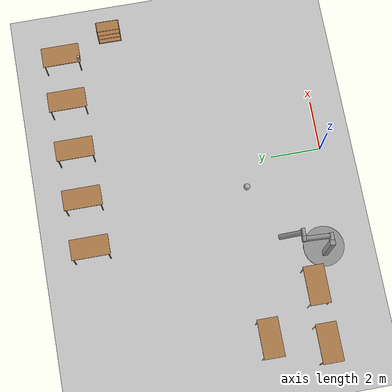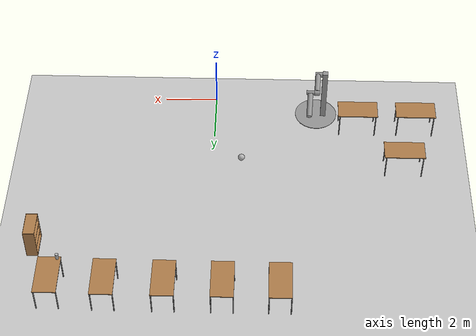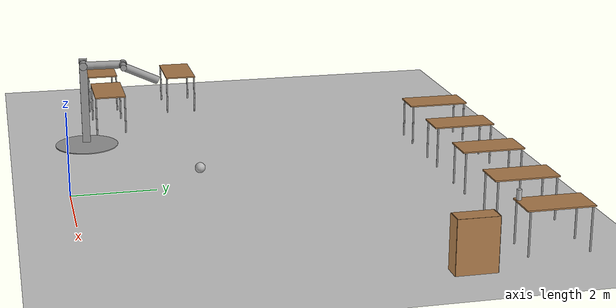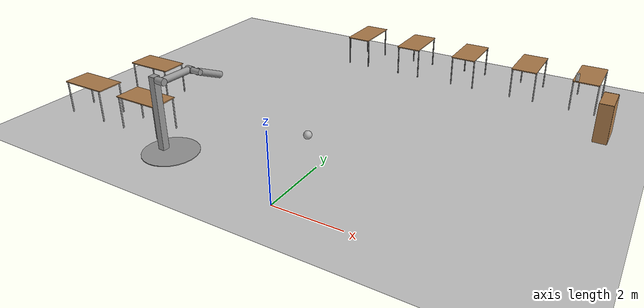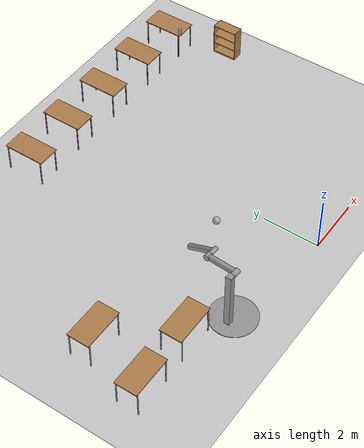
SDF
<sdf version="1.6">
 <world name="default">
  <model name="ground_plane">
   <static>1</static>
   <link name="link">
    <collision name="collision">
     <geometry><plane><normal>0 0 1</normal><size>100 100</size></plane></geometry>
     <surface>
      <contact><collide_bitmask>65535</collide_bitmask></contact>
      <friction><ode><mu>100</mu><mu2>50</mu2></ode></friction>
     </surface>
    </collision>
    <visual name="visual">
     <cast_shadows>0</cast_shadows>
     <geometry><plane><normal>0 0 1</normal><size>100 100</size></plane></geometry>
     <material>
      <script><uri>file://media/materials/scripts/gazebo.material</uri><name>Gazebo/Grey</name></script>
     </material>
    </visual>
   </link>
  </model>
  <model name="table_clone">
   <static>1</static>
   <link name="link">
    <collision name="surface">
     <pose>0 0 1 0 -0 0</pose>
     <geometry><box><size>1.5 0.8 0.03</size></box></geometry>
     <surface><friction><ode><mu>0.6</mu><mu2>0.6</mu2></ode></friction></surface>
    </collision>
    <visual name="visual1">
     <pose>0 0 1 0 -0 0</pose>
     <geometry><box><size>1.5 0.8 0.03</size></box></geometry>
     <material>
      <script><uri>file://media/materials/scripts/gazebo.material</uri><name>Gazebo/Wood</name></script>
     </material>
    </visual>
    <collision name="front_left_leg">
     <pose>0.68 0.38 0.5 0 -0 0</pose>
     <geometry><cylinder><radius>0.02</radius><length>1</length></cylinder></geometry>
    </collision>
    <visual name="front_left_leg">
     <pose>0.68 0.38 0.5 0 -0 0</pose>
     <geometry><cylinder><radius>0.02</radius><length>1</length></cylinder></geometry>
     <material>
      <script><uri>file://media/materials/scripts/gazebo.material</uri><name>Gazebo/Grey</name></script>
     </material>
    </visual>
    <collision name="front_right_leg">
     <pose>0.68 -0.38 0.5 0 -0 0</pose>
     <geometry><cylinder><radius>0.02</radius><length>1</length></cylinder></geometry>
    </collision>
    <visual name="front_right_leg">
     <pose>0.68 -0.38 0.5 0 -0 0</pose>
     <geometry><cylinder><radius>0.02</radius><length>1</length></cylinder></geometry>
     <material>
      <script><uri>file://media/materials/scripts/gazebo.material</uri><name>Gazebo/Grey</name></script>
     </material>
    </visual>
    <collision name="back_right_leg">
     <pose>-0.68 -0.38 0.5 0 -0 0</pose>
     <geometry><cylinder><radius>0.02</radius><length>1</length></cylinder></geometry>
    </collision>
    <visual name="back_right_leg">
     <pose>-0.68 -0.38 0.5 0 -0 0</pose>
     <geometry><cylinder><radius>0.02</radius><length>1</length></cylinder></geometry>
     <material>
      <script><uri>file://media/materials/scripts/gazebo.material</uri><name>Gazebo/Grey</name></script>
     </material>
    </visual>
    <collision name="back_left_leg">
     <pose>-0.68 0.38 0.5 0 -0 0</pose>
     <geometry><cylinder><radius>0.02</radius><length>1</length></cylinder></geometry>
    </collision>
    <visual name="back_left_leg">
     <pose>-0.68 0.38 0.5 0 -0 0</pose>
     <geometry><cylinder><radius>0.02</radius><length>1</length></cylinder></geometry>
     <material>
      <script><uri>file://media/materials/scripts/gazebo.material</uri><name>Gazebo/Grey</name></script>
     </material>
    </visual>
   </link>
   <pose>5.36982 9.5628 0 0 0 -1.57</pose>
  </model>
  <model name="table_clone_0">
   <static>1</static>
   <link name="link">
    <collision name="surface">
     <pose>0 0 1 0 -0 0</pose>
     <geometry><box><size>1.5 0.8 0.03</size></box></geometry>
     <surface><friction><ode><mu>0.6</mu><mu2>0.6</mu2></ode></friction></surface>
    </collision>
    <visual name="visual1">
     <pose>0 0 1 0 -0 0</pose>
     <geometry><box><size>1.5 0.8 0.03</size></box></geometry>
     <material>
      <script><uri>file://media/materials/scripts/gazebo.material</uri><name>Gazebo/Wood</name></script>
     </material>
    </visual>
    <collision name="front_left_leg">
     <pose>0.68 0.38 0.5 0 -0 0</pose>
     <geometry><cylinder><radius>0.02</radius><length>1</length></cylinder></geometry>
    </collision>
    <visual name="front_left_leg">
     <pose>0.68 0.38 0.5 0 -0 0</pose>
     <geometry><cylinder><radius>0.02</radius><length>1</length></cylinder></geometry>
     <material>
      <script><uri>file://media/materials/scripts/gazebo.material</uri><name>Gazebo/Grey</name></script>
     </material>
    </visual>
    <collision name="front_right_leg">
     <pose>0.68 -0.38 0.5 0 -0 0</pose>
     <geometry><cylinder><radius>0.02</radius><length>1</length></cylinder></geometry>
    </collision>
    <visual name="front_right_leg">
     <pose>0.68 -0.38 0.5 0 -0 0</pose>
     <geometry><cylinder><radius>0.02</radius><length>1</length></cylinder></geometry>
     <material>
      <script><uri>file://media/materials/scripts/gazebo.material</uri><name>Gazebo/Grey</name></script>
     </material>
    </visual>
    <collision name="back_right_leg">
     <pose>-0.68 -0.38 0.5 0 -0 0</pose>
     <geometry><cylinder><radius>0.02</radius><length>1</length></cylinder></geometry>
    </collision>
    <visual name="back_right_leg">
     <pose>-0.68 -0.38 0.5 0 -0 0</pose>
     <geometry><cylinder><radius>0.02</radius><length>1</length></cylinder></geometry>
     <material>
      <script><uri>file://media/materials/scripts/gazebo.material</uri><name>Gazebo/Grey</name></script>
     </material>
    </visual>
    <collision name="back_left_leg">
     <pose>-0.68 0.38 0.5 0 -0 0</pose>
     <geometry><cylinder><radius>0.02</radius><length>1</length></cylinder></geometry>
    </collision>
    <visual name="back_left_leg">
     <pose>-0.68 0.38 0.5 0 -0 0</pose>
     <geometry><cylinder><radius>0.02</radius><length>1</length></cylinder></geometry>
     <material>
      <script><uri>file://media/materials/scripts/gazebo.material</uri><name>Gazebo/Grey</name></script>
     </material>
    </visual>
   </link>
   <pose>3.47417 9.59504 0 0 0 -1.57</pose>
  </model>
  <model name="table_clone_1">
   <static>1</static>
   <link name="link">
    <collision name="surface">
     <pose>0 0 1 0 -0 0</pose>
     <geometry><box><size>1.5 0.8 0.03</size></box></geometry>
     <surface><friction><ode><mu>0.6</mu><mu2>0.6</mu2></ode></friction></surface>
    </collision>
    <visual name="visual1">
     <pose>0 0 1 0 -0 0</pose>
     <geometry><box><size>1.5 0.8 0.03</size></box></geometry>
     <material>
      <script><uri>file://media/materials/scripts/gazebo.material</uri><name>Gazebo/Wood</name></script>
     </material>
    </visual>
    <collision name="front_left_leg">
     <pose>0.68 0.38 0.5 0 -0 0</pose>
     <geometry><cylinder><radius>0.02</radius><length>1</length></cylinder></geometry>
    </collision>
    <visual name="front_left_leg">
     <pose>0.68 0.38 0.5 0 -0 0</pose>
     <geometry><cylinder><radius>0.02</radius><length>1</length></cylinder></geometry>
     <material>
      <script><uri>file://media/materials/scripts/gazebo.material</uri><name>Gazebo/Grey</name></script>
     </material>
    </visual>
    <collision name="front_right_leg">
     <pose>0.68 -0.38 0.5 0 -0 0</pose>
     <geometry><cylinder><radius>0.02</radius><length>1</length></cylinder></geometry>
    </collision>
    <visual name="front_right_leg">
     <pose>0.68 -0.38 0.5 0 -0 0</pose>
     <geometry><cylinder><radius>0.02</radius><length>1</length></cylinder></geometry>
     <material>
      <script><uri>file://media/materials/scripts/gazebo.material</uri><name>Gazebo/Grey</name></script>
     </material>
    </visual>
    <collision name="back_right_leg">
     <pose>-0.68 -0.38 0.5 0 -0 0</pose>
     <geometry><cylinder><radius>0.02</radius><length>1</length></cylinder></geometry>
    </collision>
    <visual name="back_right_leg">
     <pose>-0.68 -0.38 0.5 0 -0 0</pose>
     <geometry><cylinder><radius>0.02</radius><length>1</length></cylinder></geometry>
     <material>
      <script><uri>file://media/materials/scripts/gazebo.material</uri><name>Gazebo/Grey</name></script>
     </material>
    </visual>
    <collision name="back_left_leg">
     <pose>-0.68 0.38 0.5 0 -0 0</pose>
     <geometry><cylinder><radius>0.02</radius><length>1</length></cylinder></geometry>
    </collision>
    <visual name="back_left_leg">
     <pose>-0.68 0.38 0.5 0 -0 0</pose>
     <geometry><cylinder><radius>0.02</radius><length>1</length></cylinder></geometry>
     <material>
      <script><uri>file://media/materials/scripts/gazebo.material</uri><name>Gazebo/Grey</name></script>
     </material>
    </visual>
   </link>
   <pose>1.43565 9.59938 0 0 0 -1.57</pose>
  </model>
  <model name="table_clone_2">
   <static>1</static>
   <link name="link">
    <collision name="surface">
     <pose>0 0 1 0 -0 0</pose>
     <geometry><box><size>1.5 0.8 0.03</size></box></geometry>
     <surface><friction><ode><mu>0.6</mu><mu2>0.6</mu2></ode></friction></surface>
    </collision>
    <visual name="visual1">
     <pose>0 0 1 0 -0 0</pose>
     <geometry><box><size>1.5 0.8 0.03</size></box></geometry>
     <material>
      <script><uri>file://media/materials/scripts/gazebo.material</uri><name>Gazebo/Wood</name></script>
     </material>
    </visual>
    <collision name="front_left_leg">
     <pose>0.68 0.38 0.5 0 -0 0</pose>
     <geometry><cylinder><radius>0.02</radius><length>1</length></cylinder></geometry>
    </collision>
    <visual name="front_left_leg">
     <pose>0.68 0.38 0.5 0 -0 0</pose>
     <geometry><cylinder><radius>0.02</radius><length>1</length></cylinder></geometry>
     <material>
      <script><uri>file://media/materials/scripts/gazebo.material</uri><name>Gazebo/Grey</name></script>
     </material>
    </visual>
    <collision name="front_right_leg">
     <pose>0.68 -0.38 0.5 0 -0 0</pose>
     <geometry><cylinder><radius>0.02</radius><length>1</length></cylinder></geometry>
    </collision>
    <visual name="front_right_leg">
     <pose>0.68 -0.38 0.5 0 -0 0</pose>
     <geometry><cylinder><radius>0.02</radius><length>1</length></cylinder></geometry>
     <material>
      <script><uri>file://media/materials/scripts/gazebo.material</uri><name>Gazebo/Grey</name></script>
     </material>
    </visual>
    <collision name="back_right_leg">
     <pose>-0.68 -0.38 0.5 0 -0 0</pose>
     <geometry><cylinder><radius>0.02</radius><length>1</length></cylinder></geometry>
    </collision>
    <visual name="back_right_leg">
     <pose>-0.68 -0.38 0.5 0 -0 0</pose>
     <geometry><cylinder><radius>0.02</radius><length>1</length></cylinder></geometry>
     <material>
      <script><uri>file://media/materials/scripts/gazebo.material</uri><name>Gazebo/Grey</name></script>
     </material>
    </visual>
    <collision name="back_left_leg">
     <pose>-0.68 0.38 0.5 0 -0 0</pose>
     <geometry><cylinder><radius>0.02</radius><length>1</length></cylinder></geometry>
    </collision>
    <visual name="back_left_leg">
     <pose>-0.68 0.38 0.5 0 -0 0</pose>
     <geometry><cylinder><radius>0.02</radius><length>1</length></cylinder></geometry>
     <material>
      <script><uri>file://media/materials/scripts/gazebo.material</uri><name>Gazebo/Grey</name></script>
     </material>
    </visual>
   </link>
   <pose>-0.563458 9.59911 0 0 0 -1.57</pose>
  </model>
  <model name="table_clone_3">
   <static>1</static>
   <link name="link">
    <collision name="surface">
     <pose>0 0 1 0 -0 0</pose>
     <geometry><box><size>1.5 0.8 0.03</size></box></geometry>
     <surface><friction><ode><mu>0.6</mu><mu2>0.6</mu2></ode></friction></surface>
    </collision>
    <visual name="visual1">
     <pose>0 0 1 0 -0 0</pose>
     <geometry><box><size>1.5 0.8 0.03</size></box></geometry>
     <material>
      <script><uri>file://media/materials/scripts/gazebo.material</uri><name>Gazebo/Wood</name></script>
     </material>
    </visual>
    <collision name="front_left_leg">
     <pose>0.68 0.38 0.5 0 -0 0</pose>
     <geometry><cylinder><radius>0.02</radius><length>1</length></cylinder></geometry>
    </collision>
    <visual name="front_left_leg">
     <pose>0.68 0.38 0.5 0 -0 0</pose>
     <geometry><cylinder><radius>0.02</radius><length>1</length></cylinder></geometry>
     <material>
      <script><uri>file://media/materials/scripts/gazebo.material</uri><name>Gazebo/Grey</name></script>
     </material>
    </visual>
    <collision name="front_right_leg">
     <pose>0.68 -0.38 0.5 0 -0 0</pose>
     <geometry><cylinder><radius>0.02</radius><length>1</length></cylinder></geometry>
    </collision>
    <visual name="front_right_leg">
     <pose>0.68 -0.38 0.5 0 -0 0</pose>
     <geometry><cylinder><radius>0.02</radius><length>1</length></cylinder></geometry>
     <material>
      <script><uri>file://media/materials/scripts/gazebo.material</uri><name>Gazebo/Grey</name></script>
     </material>
    </visual>
    <collision name="back_right_leg">
     <pose>-0.68 -0.38 0.5 0 -0 0</pose>
     <geometry><cylinder><radius>0.02</radius><length>1</length></cylinder></geometry>
    </collision>
    <visual name="back_right_leg">
     <pose>-0.68 -0.38 0.5 0 -0 0</pose>
     <geometry><cylinder><radius>0.02</radius><length>1</length></cylinder></geometry>
     <material>
      <script><uri>file://media/materials/scripts/gazebo.material</uri><name>Gazebo/Grey</name></script>
     </material>
    </visual>
    <collision name="back_left_leg">
     <pose>-0.68 0.38 0.5 0 -0 0</pose>
     <geometry><cylinder><radius>0.02</radius><length>1</length></cylinder></geometry>
    </collision>
    <visual name="back_left_leg">
     <pose>-0.68 0.38 0.5 0 -0 0</pose>
     <geometry><cylinder><radius>0.02</radius><length>1</length></cylinder></geometry>
     <material>
      <script><uri>file://media/materials/scripts/gazebo.material</uri><name>Gazebo/Grey</name></script>
     </material>
    </visual>
   </link>
   <pose>-2.5236 9.5957 0 0 0 -1.57</pose>
  </model>
  <model name="table">
   <static>1</static>
   <link name="link">
    <collision name="surface">
     <pose>0 0 1 0 -0 0</pose>
     <geometry><box><size>1.5 0.8 0.03</size></box></geometry>
     <surface><friction><ode><mu>0.6</mu><mu2>0.6</mu2></ode></friction></surface>
    </collision>
    <visual name="visual1">
     <pose>0 0 1 0 -0 0</pose>
     <geometry><box><size>1.5 0.8 0.03</size></box></geometry>
     <material>
      <script><uri>file://media/materials/scripts/gazebo.material</uri><name>Gazebo/Wood</name></script>
     </material>
    </visual>
    <collision name="front_left_leg">
     <pose>0.68 0.38 0.5 0 -0 0</pose>
     <geometry><cylinder><radius>0.02</radius><length>1</length></cylinder></geometry>
    </collision>
    <visual name="front_left_leg">
     <pose>0.68 0.38 0.5 0 -0 0</pose>
     <geometry><cylinder><radius>0.02</radius><length>1</length></cylinder></geometry>
     <material>
      <script><uri>file://media/materials/scripts/gazebo.material</uri><name>Gazebo/Grey</name></script>
     </material>
    </visual>
    <collision name="front_right_leg">
     <pose>0.68 -0.38 0.5 0 -0 0</pose>
     <geometry><cylinder><radius>0.02</radius><length>1</length></cylinder></geometry>
    </collision>
    <visual name="front_right_leg">
     <pose>0.68 -0.38 0.5 0 -0 0</pose>
     <geometry><cylinder><radius>0.02</radius><length>1</length></cylinder></geometry>
     <material>
      <script><uri>file://media/materials/scripts/gazebo.material</uri><name>Gazebo/Grey</name></script>
     </material>
    </visual>
    <collision name="back_right_leg">
     <pose>-0.68 -0.38 0.5 0 -0 0</pose>
     <geometry><cylinder><radius>0.02</radius><length>1</length></cylinder></geometry>
    </collision>
    <visual name="back_right_leg">
     <pose>-0.68 -0.38 0.5 0 -0 0</pose>
     <geometry><cylinder><radius>0.02</radius><length>1</length></cylinder></geometry>
     <material>
      <script><uri>file://media/materials/scripts/gazebo.material</uri><name>Gazebo/Grey</name></script>
     </material>
    </visual>
    <collision name="back_left_leg">
     <pose>-0.68 0.38 0.5 0 -0 0</pose>
     <geometry><cylinder><radius>0.02</radius><length>1</length></cylinder></geometry>
    </collision>
    <visual name="back_left_leg">
     <pose>-0.68 0.38 0.5 0 -0 0</pose>
     <geometry><cylinder><radius>0.02</radius><length>1</length></cylinder></geometry>
     <material>
      <script><uri>file://media/materials/scripts/gazebo.material</uri><name>Gazebo/Grey</name></script>
     </material>
    </visual>
   </link>
   <pose>-7.63732 1.38708 0 0 -0 0</pose>
  </model>
  <model name="table_clone_4">
   <static>1</static>
   <link name="link">
    <collision name="surface">
     <pose>0 0 1 0 -0 0</pose>
     <geometry><box><size>1.5 0.8 0.03</size></box></geometry>
     <surface><friction><ode><mu>0.6</mu><mu2>0.6</mu2></ode></friction></surface>
    </collision>
    <visual name="visual1">
     <pose>0 0 1 0 -0 0</pose>
     <geometry><box><size>1.5 0.8 0.03</size></box></geometry>
     <material>
      <script><uri>file://media/materials/scripts/gazebo.material</uri><name>Gazebo/Wood</name></script>
     </material>
    </visual>
    <collision name="front_left_leg">
     <pose>0.68 0.38 0.5 0 -0 0</pose>
     <geometry><cylinder><radius>0.02</radius><length>1</length></cylinder></geometry>
    </collision>
    <visual name="front_left_leg">
     <pose>0.68 0.38 0.5 0 -0 0</pose>
     <geometry><cylinder><radius>0.02</radius><length>1</length></cylinder></geometry>
     <material>
      <script><uri>file://media/materials/scripts/gazebo.material</uri><name>Gazebo/Grey</name></script>
     </material>
    </visual>
    <collision name="front_right_leg">
     <pose>0.68 -0.38 0.5 0 -0 0</pose>
     <geometry><cylinder><radius>0.02</radius><length>1</length></cylinder></geometry>
    </collision>
    <visual name="front_right_leg">
     <pose>0.68 -0.38 0.5 0 -0 0</pose>
     <geometry><cylinder><radius>0.02</radius><length>1</length></cylinder></geometry>
     <material>
      <script><uri>file://media/materials/scripts/gazebo.material</uri><name>Gazebo/Grey</name></script>
     </material>
    </visual>
    <collision name="back_right_leg">
     <pose>-0.68 -0.38 0.5 0 -0 0</pose>
     <geometry><cylinder><radius>0.02</radius><length>1</length></cylinder></geometry>
    </collision>
    <visual name="back_right_leg">
     <pose>-0.68 -0.38 0.5 0 -0 0</pose>
     <geometry><cylinder><radius>0.02</radius><length>1</length></cylinder></geometry>
     <material>
      <script><uri>file://media/materials/scripts/gazebo.material</uri><name>Gazebo/Grey</name></script>
     </material>
    </visual>
    <collision name="back_left_leg">
     <pose>-0.68 0.38 0.5 0 -0 0</pose>
     <geometry><cylinder><radius>0.02</radius><length>1</length></cylinder></geometry>
    </collision>
    <visual name="back_left_leg">
     <pose>-0.68 0.38 0.5 0 -0 0</pose>
     <geometry><cylinder><radius>0.02</radius><length>1</length></cylinder></geometry>
     <material>
      <script><uri>file://media/materials/scripts/gazebo.material</uri><name>Gazebo/Grey</name></script>
     </material>
    </visual>
   </link>
   <pose>-5.43848 1.40059 0 0 -0 0</pose>
  </model>
  <model name="table_clone_11">
   <static>1</static>
   <link name="link">
    <collision name="surface">
     <pose>0 0 1 0 -0 0</pose>
     <geometry><box><size>1.5 0.8 0.03</size></box></geometry>
     <surface><friction><ode><mu>0.6</mu><mu2>0.6</mu2></ode></friction></surface>
    </collision>
    <visual name="visual1">
     <pose>0 0 1 0 -0 0</pose>
     <geometry><box><size>1.5 0.8 0.03</size></box></geometry>
     <material>
      <script><uri>file://media/materials/scripts/gazebo.material</uri><name>Gazebo/Wood</name></script>
     </material>
    </visual>
    <collision name="front_left_leg">
     <pose>0.68 0.38 0.5 0 -0 0</pose>
     <geometry><cylinder><radius>0.02</radius><length>1</length></cylinder></geometry>
    </collision>
    <visual name="front_left_leg">
     <pose>0.68 0.38 0.5 0 -0 0</pose>
     <geometry><cylinder><radius>0.02</radius><length>1</length></cylinder></geometry>
     <material>
      <script><uri>file://media/materials/scripts/gazebo.material</uri><name>Gazebo/Grey</name></script>
     </material>
    </visual>
    <collision name="front_right_leg">
     <pose>0.68 -0.38 0.5 0 -0 0</pose>
     <geometry><cylinder><radius>0.02</radius><length>1</length></cylinder></geometry>
    </collision>
    <visual name="front_right_leg">
     <pose>0.68 -0.38 0.5 0 -0 0</pose>
     <geometry><cylinder><radius>0.02</radius><length>1</length></cylinder></geometry>
     <material>
      <script><uri>file://media/materials/scripts/gazebo.material</uri><name>Gazebo/Grey</name></script>
     </material>
    </visual>
    <collision name="back_right_leg">
     <pose>-0.68 -0.38 0.5 0 -0 0</pose>
     <geometry><cylinder><radius>0.02</radius><length>1</length></cylinder></geometry>
    </collision>
    <visual name="back_right_leg">
     <pose>-0.68 -0.38 0.5 0 -0 0</pose>
     <geometry><cylinder><radius>0.02</radius><length>1</length></cylinder></geometry>
     <material>
      <script><uri>file://media/materials/scripts/gazebo.material</uri><name>Gazebo/Grey</name></script>
     </material>
    </visual>
    <collision name="back_left_leg">
     <pose>-0.68 0.38 0.5 0 -0 0</pose>
     <geometry><cylinder><radius>0.02</radius><length>1</length></cylinder></geometry>
    </collision>
    <visual name="back_left_leg">
     <pose>-0.68 0.38 0.5 0 -0 0</pose>
     <geometry><cylinder><radius>0.02</radius><length>1</length></cylinder></geometry>
     <material>
      <script><uri>file://media/materials/scripts/gazebo.material</uri><name>Gazebo/Grey</name></script>
     </material>
    </visual>
   </link>
   <pose>-7.08899 3.49444 0 0 -0 0</pose>
  </model>
  <model name="beer">
   <link name="link">
    <pose>0 0 0.115 0 -0 0</pose>
    <inertial>
     <mass>0.39</mass>
     <inertia><ixx>0.00058</ixx><ixy>0</ixy><ixz>0</ixz><iyy>0.00058</iyy><iyz>0</iyz><izz>0.00019</izz></inertia>
    </inertial>
    <collision name="collision">
     <geometry><cylinder><radius>0.055</radius><length>0.23</length></cylinder></geometry>
    </collision>
    <visual name="visual">
     <geometry><cylinder><radius>0.055</radius><length>0.23</length></cylinder></geometry>
     <material>
      <script>
       <uri>model://beer/materials/scripts</uri>
       <uri>model://beer/materials/textures</uri>
       <name>Beer/Diffuse</name>
      </script>
     </material>
    </visual>
   </link>
   <pose>5.09261 8.88555 1.01499 5e-06 3.8e-05 -0.001363</pose>
  </model>
  <model name="bookshelf_0">
   <static>1</static>
   <link name="link">
    <inertial><mass>1</mass></inertial>
    <collision name="back">
     <pose>0 0.005 0.6 0 -0 0</pose>
     <geometry><box><size>0.9 0.01 1.2</size></box></geometry>
    </collision>
    <visual name="visual1">
     <pose>0 0.005 0.6 0 -0 0</pose>
     <geometry><box><size>0.9 0.01 1.2</size></box></geometry>
     <material>
      <script><uri>file://media/materials/scripts/gazebo.material</uri><name>Gazebo/Wood</name></script>
     </material>
    </visual>
    <collision name="left_side">
     <pose>0.45 -0.195 0.6 0 -0 0</pose>
     <geometry><box><size>0.02 0.4 1.2</size></box></geometry>
    </collision>
    <visual name="visual2">
     <pose>0.45 -0.195 0.6 0 -0 0</pose>
     <geometry><box><size>0.02 0.4 1.2</size></box></geometry>
     <material>
      <script><uri>file://media/materials/scripts/gazebo.material</uri><name>Gazebo/Wood</name></script>
     </material>
    </visual>
    <collision name="right_side">
     <pose>-0.45 -0.195 0.6 0 -0 0</pose>
     <geometry><box><size>0.02 0.4 1.2</size></box></geometry>
    </collision>
    <visual name="visual3">
     <pose>-0.45 -0.195 0.6 0 -0 0</pose>
     <geometry><box><size>0.02 0.4 1.2</size></box></geometry>
     <material>
      <script><uri>file://media/materials/scripts/gazebo.material</uri><name>Gazebo/Wood</name></script>
     </material>
    </visual>
    <collision name="bottom">
     <pose>0 -0.195 0.03 0 -0 0</pose>
     <geometry><box><size>0.88 0.4 0.06</size></box></geometry>
    </collision>
    <visual name="visual4">
     <pose>0 -0.195 0.03 0 -0 0</pose>
     <geometry><box><size>0.88 0.4 0.06</size></box></geometry>
     <material>
      <script><uri>file://media/materials/scripts/gazebo.material</uri><name>Gazebo/Wood</name></script>
     </material>
    </visual>
    <collision name="top">
     <pose>0 -0.195 1.19 0 -0 0</pose>
     <geometry><box><size>0.88 0.4 0.02</size></box></geometry>
    </collision>
    <visual name="visual5">
     <pose>0 -0.195 1.19 0 -0 0</pose>
     <geometry><box><size>0.88 0.4 0.02</size></box></geometry>
     <material>
      <script><uri>file://media/materials/scripts/gazebo.material</uri><name>Gazebo/Wood</name></script>
     </material>
    </visual>
    <collision name="low_shelf">
     <pose>0 -0.195 0.43 0 -0 0</pose>
     <geometry><box><size>0.88 0.4 0.02</size></box></geometry>
    </collision>
    <visual name="visual6">
     <pose>0 -0.195 0.43 0 -0 0</pose>
     <geometry><box><size>0.88 0.4 0.02</size></box></geometry>
     <material>
      <script><uri>file://media/materials/scripts/gazebo.material</uri><name>Gazebo/Wood</name></script>
     </material>
    </visual>
    <collision name="high_shelf">
     <pose>0 -0.195 0.8 0 -0 0</pose>
     <geometry><box><size>0.88 0.4 0.02</size></box></geometry>
    </collision>
    <visual name="visual7">
     <pose>0 -0.195 0.8 0 -0 0</pose>
     <geometry><box><size>0.88 0.4 0.02</size></box></geometry>
     <material>
      <script><uri>file://media/materials/scripts/gazebo.material</uri><name>Gazebo/Wood</name></script>
     </material>
    </visual>
   </link>
   <pose>6.39238 7.5379 0.004868 0 0 -1.57246</pose>
  </model>
  <model name="double_pendulum_with_base">
   <link name="base">
    <inertial>
     <mass>100</mass>
     <inertia><ixx>1</ixx><ixy>0</ixy><ixz>0</ixz><iyy>1</iyy><iyz>0</iyz><izz>1</izz></inertia>
    </inertial>
    <visual name="vis_plate_on_ground">
     <pose>0 0 0.01 0 -0 0</pose>
     <geometry><cylinder><radius>0.8</radius><length>0.02</length></cylinder></geometry>
     <material>
      <script><uri>file://media/materials/scripts/gazebo.material</uri><name>Gazebo/Grey</name></script>
     </material>
    </visual>
    <visual name="vis_pole">
     <pose>-0.275 0 1.1 0 -0 0</pose>
     <geometry><box><size>0.2 0.2 2.2</size></box></geometry>
     <material>
      <script><uri>file://media/materials/scripts/gazebo.material</uri><name>Gazebo/Grey</name></script>
     </material>
    </visual>
    <collision name="col_plate_on_ground">
     <pose>0 0 0.01 0 -0 0</pose>
     <geometry><cylinder><radius>0.8</radius><length>0.02</length></cylinder></geometry>
    </collision>
    <collision name="col_pole">
     <pose>-0.275 0 1.1 0 -0 0</pose>
     <geometry><box><size>0.2 0.2 2.2</size></box></geometry>
    </collision>
   </link>
   <link name="upper_link">
    <pose>0 0 2.1 -1.5708 0 0</pose>
    <inertial>
     <pose>0 0 0.5 0 -0 0</pose>
     <inertia><ixx>1</ixx><ixy>0</ixy><ixz>0</ixz><iyy>1</iyy><iyz>0</iyz><izz>1</izz></inertia>
     <mass>1</mass>
    </inertial>
    <visual name="vis_upper_joint">
     <pose>-0.05 0 0 3.14159 1.57079 3.14159</pose>
     <geometry><cylinder><radius>0.1</radius><length>0.3</length></cylinder></geometry>
     <material>
      <script><uri>file://media/materials/scripts/gazebo.material</uri><name>Gazebo/Grey</name></script>
     </material>
    </visual>
    <visual name="vis_lower_joint">
     <pose>0 0 1 3.14159 1.57079 3.14159</pose>
     <geometry><cylinder><radius>0.1</radius><length>0.2</length></cylinder></geometry>
     <material>
      <script><uri>file://media/materials/scripts/gazebo.material</uri><name>Gazebo/Grey</name></script>
     </material>
    </visual>
    <visual name="vis_cylinder">
     <pose>0 0 0.5 0 -0 0</pose>
     <geometry><cylinder><radius>0.1</radius><length>0.9</length></cylinder></geometry>
     <material>
      <script><uri>file://media/materials/scripts/gazebo.material</uri><name>Gazebo/Grey</name></script>
     </material>
    </visual>
    <collision name="col_upper_joint">
     <pose>-0.05 0 0 3.14159 1.57079 3.14159</pose>
     <geometry><cylinder><radius>0.1</radius><length>0.3</length></cylinder></geometry>
    </collision>
    <collision name="col_lower_joint">
     <pose>0 0 1 3.14159 1.57079 3.14159</pose>
     <geometry><cylinder><radius>0.1</radius><length>0.2</length></cylinder></geometry>
    </collision>
    <collision name="col_cylinder">
     <pose>0 0 0.5 0 -0 0</pose>
     <geometry><cylinder><radius>0.1</radius><length>0.9</length></cylinder></geometry>
    </collision>
   </link>
   <link name="lower_link">
    <pose>0.25 1 2.1 -2 0 0</pose>
    <inertial>
     <pose>0 0 0.5 0 -0 0</pose>
     <inertia><ixx>1</ixx><ixy>0</ixy><ixz>0</ixz><iyy>1</iyy><iyz>0</iyz><izz>1</izz></inertia>
     <mass>1</mass>
    </inertial>
    <visual name="vis_lower_joint">
     <pose>0 0 0 3.14159 1.57079 3.14159</pose>
     <geometry><cylinder><radius>0.08</radius><length>0.3</length></cylinder></geometry>
     <material>
      <script><uri>file://media/materials/scripts/gazebo.material</uri><name>Gazebo/Grey</name></script>
     </material>
    </visual>
    <visual name="vis_cylinder">
     <pose>0 0 0.5 0 -0 0</pose>
     <geometry><cylinder><radius>0.1</radius><length>0.9</length></cylinder></geometry>
     <material>
      <script><uri>file://media/materials/scripts/gazebo.material</uri><name>Gazebo/Grey</name></script>
     </material>
    </visual>
    <collision name="col_lower_joint">
     <pose>0 0 0 3.14159 1.57079 3.14159</pose>
     <geometry><cylinder><radius>0.08</radius><length>0.3</length></cylinder></geometry>
    </collision>
    <collision name="col_cylinder">
     <pose>0 0 0.5 0 -0 0</pose>
     <geometry><cylinder><radius>0.1</radius><length>0.9</length></cylinder></geometry>
    </collision>
   </link>
   <joint name="upper_joint" type="revolute">
    <parent>base</parent>
    <child>upper_link</child>
    <axis>
     <xyz>1 0 0</xyz>
     <use_parent_model_frame>0</use_parent_model_frame>
     <limit><lower>-1e+16</lower><upper>1e+16</upper></limit>
     <dynamics><spring_reference>0</spring_reference><spring_stiffness>0</spring_stiffness></dynamics>
    </axis>
   </joint>
   <joint name="lower_joint" type="revolute">
    <parent>upper_link</parent>
    <child>lower_link</child>
    <axis>
     <xyz>1 0 0</xyz>
     <use_parent_model_frame>0</use_parent_model_frame>
     <limit><lower>-1e+16</lower><upper>1e+16</upper></limit>
     <dynamics><spring_reference>0</spring_reference><spring_stiffness>0</spring_stiffness></dynamics>
    </axis>
   </joint>
   <pose>-3.88845 0.679683 0 -1e-06 2e-06 -0.053019</pose>
  </model>
  <model name="frc2016_ball">
   <pose>-1.04378 3.18621 0.127 0 -0 0</pose>
   <link name="link">
    <inertial>
     <mass>0.213</mass>
     <inertia>
      <ixx>0.00322667</ixx>
      <ixy>0</ixy>
      <ixz>0</ixz>
      <iyy>0.00322667</iyy>
      <iyz>0</iyz>
      <izz>0.00322667</izz>
     </inertia>
    </inertial>
    <visual name="visual"><geometry><sphere><radius>0.127</radius></sphere></geometry></visual>
    <collision name="collision">
     <geometry><sphere><radius>0.127</radius></sphere></geometry>
     <surface>
      <bounce><restitution_coefficient>0.15937</restitution_coefficient><threshold>0</threshold></bounce>
      <contact><ode><max_vel>100</max_vel><min_depth>0.001</min_depth></ode></contact>
     </surface>
    </collision>
   </link>
  </model>
 </world>
</sdf>
